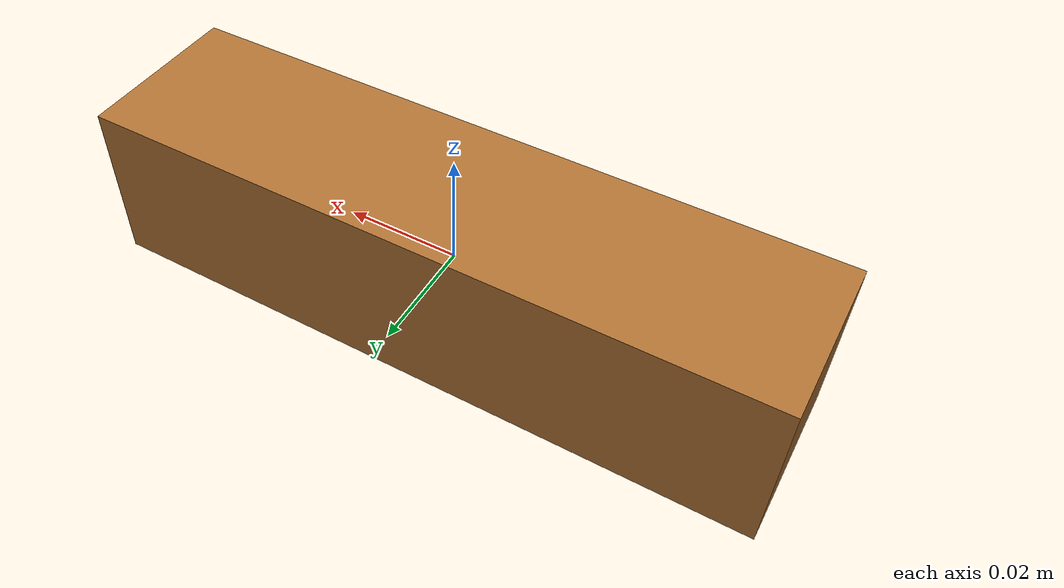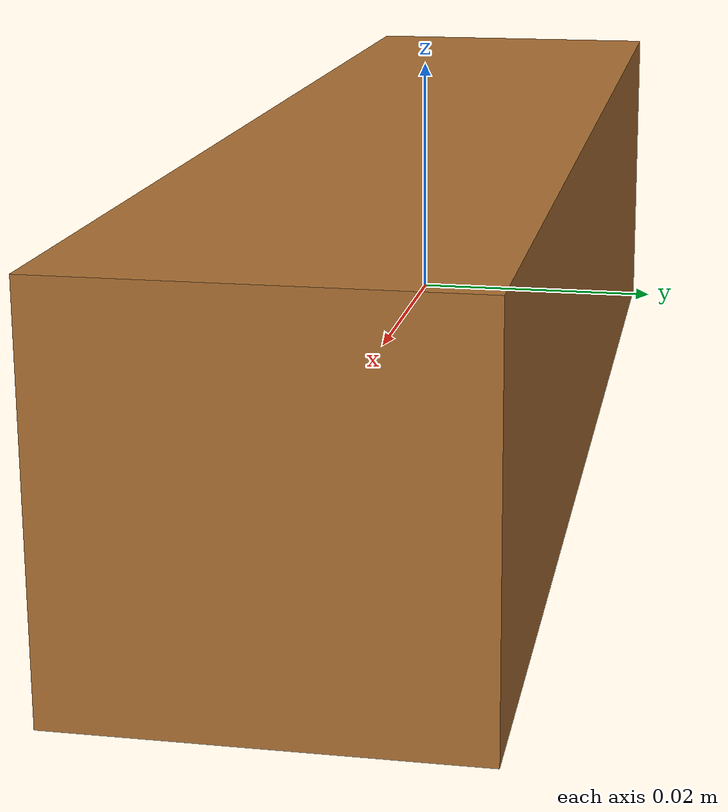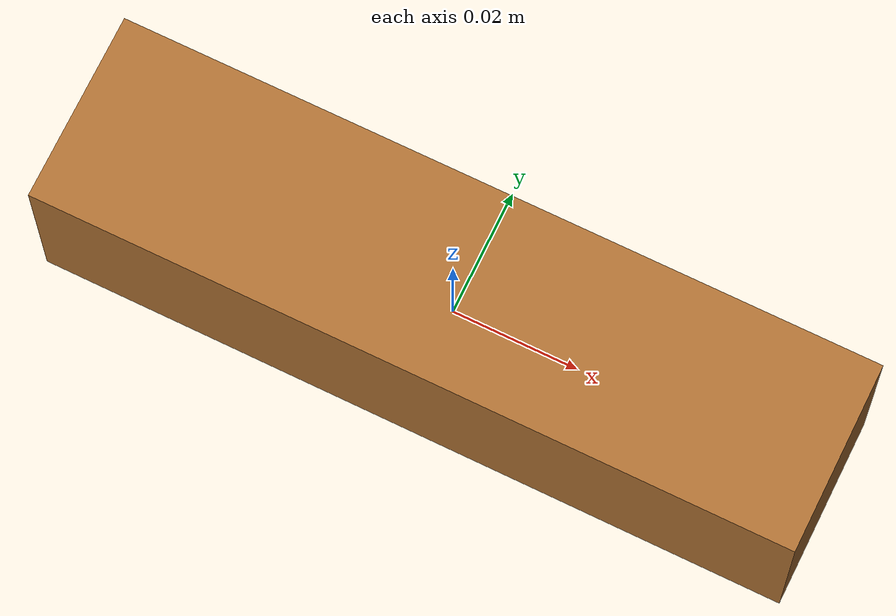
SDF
<?xml version="1.0"?>
<sdf version="1.10">
  <model name="warehouse_manipulation_box_handheld">
    <static>false</static>
    <link name="box">
      <velocity_decay>
        <linear>0.8</linear>
        <angular>1.2</angular>
      </velocity_decay>
      <inertial>
        <mass>0.35</mass>
        <inertia>
          <ixx>0.0000525</ixx>
          <iyy>0.00044625</iyy>
          <izz>0.00044625</izz>
          <ixy>0</ixy>
          <ixz>0</ixz>
          <iyz>0</iyz>
        </inertia>
      </inertial>
      <collision name="collision">
        <geometry><box><size>0.12 0.03 0.03</size></box></geometry>
        <surface>
          <friction>
            <ode><mu>3.0</mu><mu2>3.0</mu2></ode>
          </friction>
          <bounce><restitution_coefficient>0</restitution_coefficient></bounce>
          <contact>
            <ode>
              <kp>20000.0</kp>
              <kd>2000.0</kd>
              <max_vel>0.01</max_vel>
              <min_depth>0.002</min_depth>
            </ode>
          </contact>
        </surface>
      </collision>
      <visual name="visual">
        <geometry><box><size>0.12 0.03 0.03</size></box></geometry>
        <material>
          <ambient>0.48 0.30 0.13 1</ambient>
          <diffuse>0.68 0.44 0.20 1</diffuse>
          <specular>0.05 0.05 0.05 1</specular>
        </material>
      </visual>
    </link>
  </model>
</sdf>
